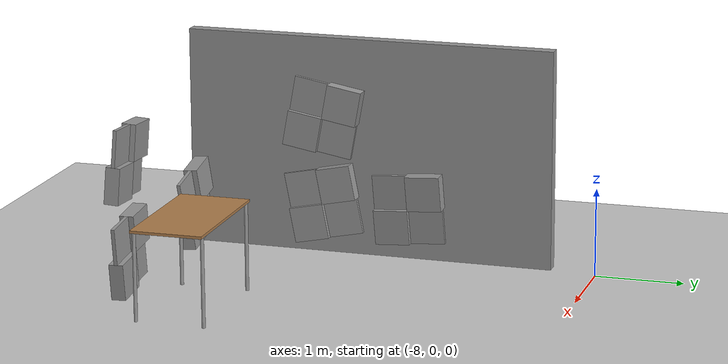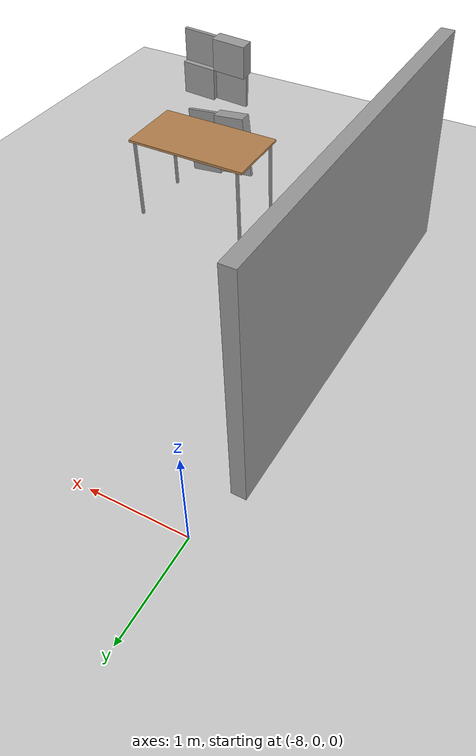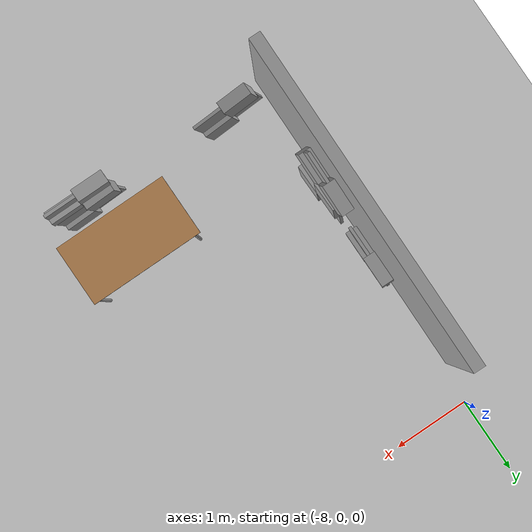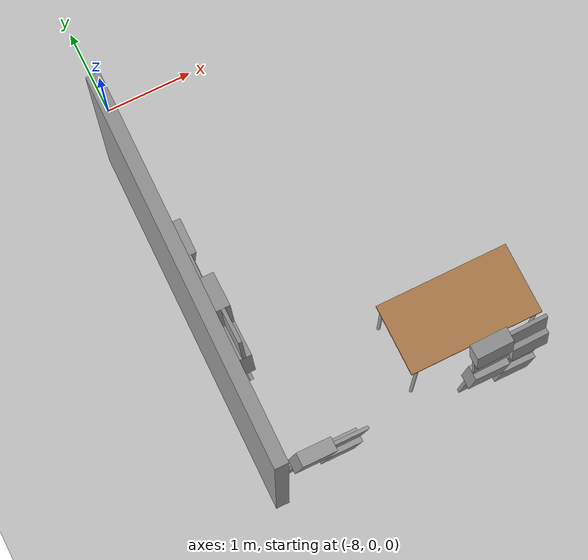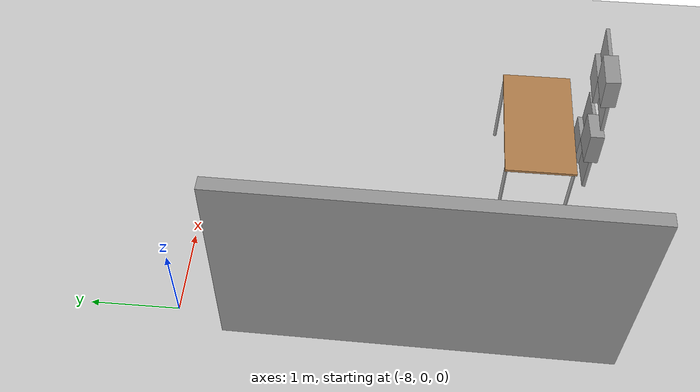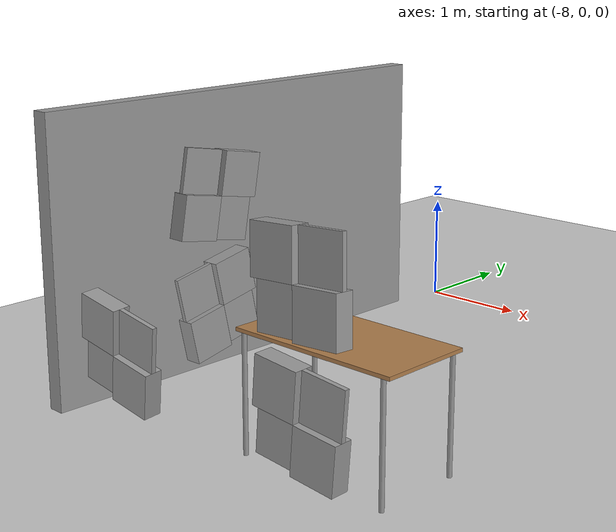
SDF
<sdf version="1.7">
 <world name="default">
  <model name="demo_clean">
   <static>1</static>
   <link name="Wall_1">
    <collision name="Wall_1_Collision">
     <geometry><box><size>4.27044 0.15 2.5</size></box></geometry>
     <pose>0 0 1.25 0 -0 0</pose>
     <surface>
      <friction>
       <ode><mu>1</mu><mu2>1</mu2><fdir1>0 0 0</fdir1><slip1>0</slip1><slip2>0</slip2></ode>
       <torsional>
        <coefficient>1</coefficient>
        <patch_radius>0</patch_radius>
        <surface_radius>0</surface_radius>
        <use_patch_radius>1</use_patch_radius>
        <ode><slip>0</slip></ode>
       </torsional>
      </friction>
      <bounce><restitution_coefficient>0</restitution_coefficient><threshold>1e+06</threshold></bounce>
      <contact>
       <collide_without_contact>0</collide_without_contact>
       <collide_without_contact_bitmask>1</collide_without_contact_bitmask>
       <collide_bitmask>1</collide_bitmask>
       <ode>
        <soft_cfm>0</soft_cfm>
        <soft_erp>0.2</soft_erp>
        <kp>1e+13</kp>
        <kd>1</kd>
        <max_vel>0.01</max_vel>
        <min_depth>0</min_depth>
       </ode>
       <bullet>
        <split_impulse>1</split_impulse>
        <split_impulse_penetration_threshold>-0.01</split_impulse_penetration_threshold>
        <soft_cfm>0</soft_cfm>
        <soft_erp>0.2</soft_erp>
        <kp>1e+13</kp>
        <kd>1</kd>
       </bullet>
      </contact>
     </surface>
    </collision>
    <visual name="Wall_1_Visual">
     <geometry><box><size>4.27044 0.15 2.5</size></box></geometry>
     <material>
      <script><name>Gazebo/Grey</name><uri>file://media/materials/scripts/gazebo.material</uri></script>
      <ambient>1 1 1 1</ambient>
      <shader type="pixel"><normal_map>default</normal_map></shader>
     </material>
     <pose>0 0 1.25 0 -0 0</pose>
    </visual>
    <pose>-8.17617 -2.66151 0 0 0 -1.58051</pose>
   </link>
  </model>
  <model name="ground_plane">
   <static>1</static>
   <link name="link">
    <collision name="collision">
     <geometry><plane><normal>0 0 1</normal><size>100 100</size></plane></geometry>
     <surface>
      <contact><collide_bitmask>65535</collide_bitmask></contact>
      <friction><ode><mu>100</mu><mu2>50</mu2></ode></friction>
     </surface>
    </collision>
    <visual name="visual">
     <cast_shadows>0</cast_shadows>
     <geometry><plane><normal>0 0 1</normal><size>100 100</size></plane></geometry>
     <material>
      <script><uri>file://media/materials/scripts/gazebo.material</uri><name>Gazebo/Grey</name></script>
     </material>
    </visual>
   </link>
  </model>
  <model name="wall_slate_13">
   <static>1</static>
   <link name="link_0">
    <inertial><mass>1</mass></inertial>
    <gravity>0</gravity>
    <visual name="visual">
     <pose>0 0.2 0.2 0 -0 0</pose>
     <geometry><box><size>0.16 0.4 0.4</size></box></geometry>
     <material>
      <lighting>1</lighting>
      <script><uri>file://media/materials/scripts/gazebo.material</uri><name>Gazebo/Grey</name></script>
      <shader type="pixel"><normal_map>__default__</normal_map></shader>
      <ambient>0.3 0.3 0.3 1</ambient>
      <diffuse>0.7 0.7 0.7 1</diffuse>
      <specular>0.01 0.01 0.01 1</specular>
      <emissive>0 0 0 1</emissive>
     </material>
    </visual>
    <visual name="ModelPreview_0::link_0::visual_1">
     <pose>0 0.2 -0.2 0 -0 0</pose>
     <geometry><box><size>0.04 0.4 0.4</size></box></geometry>
     <material>
      <lighting>1</lighting>
      <script><uri>file://media/materials/scripts/gazebo.material</uri><name>Gazebo/Grey</name></script>
      <shader type="pixel"><normal_map>__default__</normal_map></shader>
      <ambient>0.3 0.3 0.3 1</ambient>
      <diffuse>0.7 0.7 0.7 1</diffuse>
      <specular>0.01 0.01 0.01 1</specular>
      <emissive>0 0 0 1</emissive>
     </material>
    </visual>
    <visual name="ModelPreview_0::link_0::visual_2">
     <pose>0 -0.2 0.2 0 -0 0</pose>
     <geometry><box><size>0.04 0.4 0.4</size></box></geometry>
     <material>
      <lighting>1</lighting>
      <script><uri>file://media/materials/scripts/gazebo.material</uri><name>Gazebo/Grey</name></script>
      <shader type="pixel"><normal_map>__default__</normal_map></shader>
      <ambient>0.3 0.3 0.3 1</ambient>
      <diffuse>0.7 0.7 0.7 1</diffuse>
      <specular>0.01 0.01 0.01 1</specular>
      <emissive>0 0 0 1</emissive>
     </material>
    </visual>
    <visual name="ModelPreview_0::link_0::visual_3">
     <pose>0 -0.2 -0.2 0 -0 0</pose>
     <geometry><box><size>0.16 0.4 0.4</size></box></geometry>
     <material>
      <lighting>1</lighting>
      <script><uri>file://media/materials/scripts/gazebo.material</uri><name>Gazebo/Grey</name></script>
      <shader type="pixel"><normal_map>__default__</normal_map></shader>
      <ambient>0.3 0.3 0.3 1</ambient>
      <diffuse>0.7 0.7 0.7 1</diffuse>
      <specular>0.01 0.01 0.01 1</specular>
      <emissive>0 0 0 1</emissive>
     </material>
    </visual>
    <collision name="collision_2">
     <pose>0 -0.2 0.2 0 -0 0</pose>
     <geometry><box><size>0.04 0.4 0.4</size></box></geometry>
     <surface>
      <friction>
       <ode><mu>1</mu><mu2>1</mu2><fdir1>0 0 0</fdir1><slip1>0</slip1><slip2>0</slip2></ode>
       <torsional>
        <coefficient>1</coefficient>
        <patch_radius>0</patch_radius>
        <surface_radius>0</surface_radius>
        <use_patch_radius>1</use_patch_radius>
        <ode><slip>0</slip></ode>
       </torsional>
      </friction>
      <bounce><restitution_coefficient>0</restitution_coefficient><threshold>1e+06</threshold></bounce>
      <contact>
       <collide_without_contact>0</collide_without_contact>
       <collide_without_contact_bitmask>1</collide_without_contact_bitmask>
       <collide_bitmask>1</collide_bitmask>
       <ode>
        <soft_cfm>0</soft_cfm>
        <soft_erp>0.2</soft_erp>
        <kp>1e+13</kp>
        <kd>1</kd>
        <max_vel>0.01</max_vel>
        <min_depth>0</min_depth>
       </ode>
       <bullet>
        <split_impulse>1</split_impulse>
        <split_impulse_penetration_threshold>-0.01</split_impulse_penetration_threshold>
        <soft_cfm>0</soft_cfm>
        <soft_erp>0.2</soft_erp>
        <kp>1e+13</kp>
        <kd>1</kd>
       </bullet>
      </contact>
     </surface>
    </collision>
    <collision name="collision_1">
     <pose>0 0.2 -0.2 0 -0 0</pose>
     <geometry><box><size>0.04 0.4 0.4</size></box></geometry>
     <surface>
      <friction>
       <ode><mu>1</mu><mu2>1</mu2><fdir1>0 0 0</fdir1><slip1>0</slip1><slip2>0</slip2></ode>
       <torsional>
        <coefficient>1</coefficient>
        <patch_radius>0</patch_radius>
        <surface_radius>0</surface_radius>
        <use_patch_radius>1</use_patch_radius>
        <ode><slip>0</slip></ode>
       </torsional>
      </friction>
      <bounce><restitution_coefficient>0</restitution_coefficient><threshold>1e+06</threshold></bounce>
      <contact>
       <collide_without_contact>0</collide_without_contact>
       <collide_without_contact_bitmask>1</collide_without_contact_bitmask>
       <collide_bitmask>1</collide_bitmask>
       <ode>
        <soft_cfm>0</soft_cfm>
        <soft_erp>0.2</soft_erp>
        <kp>1e+13</kp>
        <kd>1</kd>
        <max_vel>0.01</max_vel>
        <min_depth>0</min_depth>
       </ode>
       <bullet>
        <split_impulse>1</split_impulse>
        <split_impulse_penetration_threshold>-0.01</split_impulse_penetration_threshold>
        <soft_cfm>0</soft_cfm>
        <soft_erp>0.2</soft_erp>
        <kp>1e+13</kp>
        <kd>1</kd>
       </bullet>
      </contact>
     </surface>
    </collision>
    <collision name="collision_4">
     <pose>0 0.2 0.2 0 -0 0</pose>
     <geometry><box><size>0.16 0.4 0.4</size></box></geometry>
     <surface>
      <friction>
       <ode><mu>1</mu><mu2>1</mu2><fdir1>0 0 0</fdir1><slip1>0</slip1><slip2>0</slip2></ode>
       <torsional>
        <coefficient>1</coefficient>
        <patch_radius>0</patch_radius>
        <surface_radius>0</surface_radius>
        <use_patch_radius>1</use_patch_radius>
        <ode><slip>0</slip></ode>
       </torsional>
      </friction>
      <bounce><restitution_coefficient>0</restitution_coefficient><threshold>1e+06</threshold></bounce>
      <contact>
       <collide_without_contact>0</collide_without_contact>
       <collide_without_contact_bitmask>1</collide_without_contact_bitmask>
       <collide_bitmask>1</collide_bitmask>
       <ode>
        <soft_cfm>0</soft_cfm>
        <soft_erp>0.2</soft_erp>
        <kp>1e+13</kp>
        <kd>1</kd>
        <max_vel>0.01</max_vel>
        <min_depth>0</min_depth>
       </ode>
       <bullet>
        <split_impulse>1</split_impulse>
        <split_impulse_penetration_threshold>-0.01</split_impulse_penetration_threshold>
        <soft_cfm>0</soft_cfm>
        <soft_erp>0.2</soft_erp>
        <kp>1e+13</kp>
        <kd>1</kd>
       </bullet>
      </contact>
     </surface>
    </collision>
    <collision name="collision_3">
     <pose>0 -0.2 -0.2 0 -0 0</pose>
     <geometry><box><size>0.16 0.4 0.4</size></box></geometry>
     <surface>
      <friction>
       <ode><mu>1</mu><mu2>1</mu2><fdir1>0 0 0</fdir1><slip1>0</slip1><slip2>0</slip2></ode>
       <torsional>
        <coefficient>1</coefficient>
        <patch_radius>0</patch_radius>
        <surface_radius>0</surface_radius>
        <use_patch_radius>1</use_patch_radius>
        <ode><slip>0</slip></ode>
       </torsional>
      </friction>
      <bounce><restitution_coefficient>0</restitution_coefficient><threshold>1e+06</threshold></bounce>
      <contact>
       <collide_without_contact>0</collide_without_contact>
       <collide_without_contact_bitmask>1</collide_without_contact_bitmask>
       <collide_bitmask>1</collide_bitmask>
       <ode>
        <soft_cfm>0</soft_cfm>
        <soft_erp>0.2</soft_erp>
        <kp>1e+13</kp>
        <kd>1</kd>
        <max_vel>0.01</max_vel>
        <min_depth>0</min_depth>
       </ode>
       <bullet>
        <split_impulse>1</split_impulse>
        <split_impulse_penetration_threshold>-0.01</split_impulse_penetration_threshold>
        <soft_cfm>0</soft_cfm>
        <soft_erp>0.2</soft_erp>
        <kp>1e+13</kp>
        <kd>1</kd>
       </bullet>
      </contact>
     </surface>
    </collision>
   </link>
   <pose>-5.59149 -4.565 0.6 0.1 -0.02 1.5757</pose>
  </model>
  <model name="wall_slate_33">
   <static>1</static>
   <link name="link_0">
    <inertial><mass>1</mass></inertial>
    <gravity>0</gravity>
    <visual name="visual">
     <pose>0 0.2 0.2 0 -0 0</pose>
     <geometry><box><size>0.16 0.4 0.4</size></box></geometry>
     <material>
      <lighting>1</lighting>
      <script><uri>file://media/materials/scripts/gazebo.material</uri><name>Gazebo/Grey</name></script>
      <shader type="pixel"><normal_map>__default__</normal_map></shader>
      <ambient>0.3 0.3 0.3 1</ambient>
      <diffuse>0.7 0.7 0.7 1</diffuse>
      <specular>0.01 0.01 0.01 1</specular>
      <emissive>0 0 0 1</emissive>
     </material>
    </visual>
    <visual name="ModelPreview_0::link_0::visual_1">
     <pose>0 0.2 -0.2 0 -0 0</pose>
     <geometry><box><size>0.04 0.4 0.4</size></box></geometry>
     <material>
      <lighting>1</lighting>
      <script><uri>file://media/materials/scripts/gazebo.material</uri><name>Gazebo/Grey</name></script>
      <shader type="pixel"><normal_map>__default__</normal_map></shader>
      <ambient>0.3 0.3 0.3 1</ambient>
      <diffuse>0.7 0.7 0.7 1</diffuse>
      <specular>0.01 0.01 0.01 1</specular>
      <emissive>0 0 0 1</emissive>
     </material>
    </visual>
    <visual name="ModelPreview_0::link_0::visual_2">
     <pose>0 -0.2 0.2 0 -0 0</pose>
     <geometry><box><size>0.04 0.4 0.4</size></box></geometry>
     <material>
      <lighting>1</lighting>
      <script><uri>file://media/materials/scripts/gazebo.material</uri><name>Gazebo/Grey</name></script>
      <shader type="pixel"><normal_map>__default__</normal_map></shader>
      <ambient>0.3 0.3 0.3 1</ambient>
      <diffuse>0.7 0.7 0.7 1</diffuse>
      <specular>0.01 0.01 0.01 1</specular>
      <emissive>0 0 0 1</emissive>
     </material>
    </visual>
    <visual name="ModelPreview_0::link_0::visual_3">
     <pose>0 -0.2 -0.2 0 -0 0</pose>
     <geometry><box><size>0.16 0.4 0.4</size></box></geometry>
     <material>
      <lighting>1</lighting>
      <script><uri>file://media/materials/scripts/gazebo.material</uri><name>Gazebo/Grey</name></script>
      <shader type="pixel"><normal_map>__default__</normal_map></shader>
      <ambient>0.3 0.3 0.3 1</ambient>
      <diffuse>0.7 0.7 0.7 1</diffuse>
      <specular>0.01 0.01 0.01 1</specular>
      <emissive>0 0 0 1</emissive>
     </material>
    </visual>
    <collision name="collision_2">
     <pose>0 -0.2 0.2 0 -0 0</pose>
     <geometry><box><size>0.04 0.4 0.4</size></box></geometry>
     <surface>
      <friction>
       <ode><mu>1</mu><mu2>1</mu2><fdir1>0 0 0</fdir1><slip1>0</slip1><slip2>0</slip2></ode>
       <torsional>
        <coefficient>1</coefficient>
        <patch_radius>0</patch_radius>
        <surface_radius>0</surface_radius>
        <use_patch_radius>1</use_patch_radius>
        <ode><slip>0</slip></ode>
       </torsional>
      </friction>
      <bounce><restitution_coefficient>0</restitution_coefficient><threshold>1e+06</threshold></bounce>
      <contact>
       <collide_without_contact>0</collide_without_contact>
       <collide_without_contact_bitmask>1</collide_without_contact_bitmask>
       <collide_bitmask>1</collide_bitmask>
       <ode>
        <soft_cfm>0</soft_cfm>
        <soft_erp>0.2</soft_erp>
        <kp>1e+13</kp>
        <kd>1</kd>
        <max_vel>0.01</max_vel>
        <min_depth>0</min_depth>
       </ode>
       <bullet>
        <split_impulse>1</split_impulse>
        <split_impulse_penetration_threshold>-0.01</split_impulse_penetration_threshold>
        <soft_cfm>0</soft_cfm>
        <soft_erp>0.2</soft_erp>
        <kp>1e+13</kp>
        <kd>1</kd>
       </bullet>
      </contact>
     </surface>
    </collision>
    <collision name="collision_1">
     <pose>0 0.2 -0.2 0 -0 0</pose>
     <geometry><box><size>0.04 0.4 0.4</size></box></geometry>
     <surface>
      <friction>
       <ode><mu>1</mu><mu2>1</mu2><fdir1>0 0 0</fdir1><slip1>0</slip1><slip2>0</slip2></ode>
       <torsional>
        <coefficient>1</coefficient>
        <patch_radius>0</patch_radius>
        <surface_radius>0</surface_radius>
        <use_patch_radius>1</use_patch_radius>
        <ode><slip>0</slip></ode>
       </torsional>
      </friction>
      <bounce><restitution_coefficient>0</restitution_coefficient><threshold>1e+06</threshold></bounce>
      <contact>
       <collide_without_contact>0</collide_without_contact>
       <collide_without_contact_bitmask>1</collide_without_contact_bitmask>
       <collide_bitmask>1</collide_bitmask>
       <ode>
        <soft_cfm>0</soft_cfm>
        <soft_erp>0.2</soft_erp>
        <kp>1e+13</kp>
        <kd>1</kd>
        <max_vel>0.01</max_vel>
        <min_depth>0</min_depth>
       </ode>
       <bullet>
        <split_impulse>1</split_impulse>
        <split_impulse_penetration_threshold>-0.01</split_impulse_penetration_threshold>
        <soft_cfm>0</soft_cfm>
        <soft_erp>0.2</soft_erp>
        <kp>1e+13</kp>
        <kd>1</kd>
       </bullet>
      </contact>
     </surface>
    </collision>
    <collision name="collision_4">
     <pose>0 0.2 0.2 0 -0 0</pose>
     <geometry><box><size>0.16 0.4 0.4</size></box></geometry>
     <surface>
      <friction>
       <ode><mu>1</mu><mu2>1</mu2><fdir1>0 0 0</fdir1><slip1>0</slip1><slip2>0</slip2></ode>
       <torsional>
        <coefficient>1</coefficient>
        <patch_radius>0</patch_radius>
        <surface_radius>0</surface_radius>
        <use_patch_radius>1</use_patch_radius>
        <ode><slip>0</slip></ode>
       </torsional>
      </friction>
      <bounce><restitution_coefficient>0</restitution_coefficient><threshold>1e+06</threshold></bounce>
      <contact>
       <collide_without_contact>0</collide_without_contact>
       <collide_without_contact_bitmask>1</collide_without_contact_bitmask>
       <collide_bitmask>1</collide_bitmask>
       <ode>
        <soft_cfm>0</soft_cfm>
        <soft_erp>0.2</soft_erp>
        <kp>1e+13</kp>
        <kd>1</kd>
        <max_vel>0.01</max_vel>
        <min_depth>0</min_depth>
       </ode>
       <bullet>
        <split_impulse>1</split_impulse>
        <split_impulse_penetration_threshold>-0.01</split_impulse_penetration_threshold>
        <soft_cfm>0</soft_cfm>
        <soft_erp>0.2</soft_erp>
        <kp>1e+13</kp>
        <kd>1</kd>
       </bullet>
      </contact>
     </surface>
    </collision>
    <collision name="collision_3">
     <pose>0 -0.2 -0.2 0 -0 0</pose>
     <geometry><box><size>0.16 0.4 0.4</size></box></geometry>
     <surface>
      <friction>
       <ode><mu>1</mu><mu2>1</mu2><fdir1>0 0 0</fdir1><slip1>0</slip1><slip2>0</slip2></ode>
       <torsional>
        <coefficient>1</coefficient>
        <patch_radius>0</patch_radius>
        <surface_radius>0</surface_radius>
        <use_patch_radius>1</use_patch_radius>
        <ode><slip>0</slip></ode>
       </torsional>
      </friction>
      <bounce><restitution_coefficient>0</restitution_coefficient><threshold>1e+06</threshold></bounce>
      <contact>
       <collide_without_contact>0</collide_without_contact>
       <collide_without_contact_bitmask>1</collide_without_contact_bitmask>
       <collide_bitmask>1</collide_bitmask>
       <ode>
        <soft_cfm>0</soft_cfm>
        <soft_erp>0.2</soft_erp>
        <kp>1e+13</kp>
        <kd>1</kd>
        <max_vel>0.01</max_vel>
        <min_depth>0</min_depth>
       </ode>
       <bullet>
        <split_impulse>1</split_impulse>
        <split_impulse_penetration_threshold>-0.01</split_impulse_penetration_threshold>
        <soft_cfm>0</soft_cfm>
        <soft_erp>0.2</soft_erp>
        <kp>1e+13</kp>
        <kd>1</kd>
       </bullet>
      </contact>
     </surface>
    </collision>
   </link>
   <pose>-5.59149 -4.565 1.6 -0.06 0.06 1.5757</pose>
  </model>
  <model name="wall_slate_37">
   <static>1</static>
   <link name="link_0">
    <inertial><mass>1</mass></inertial>
    <gravity>0</gravity>
    <visual name="visual">
     <pose>0 0.2 0.2 0 -0 0</pose>
     <geometry><box><size>0.16 0.4 0.4</size></box></geometry>
     <material>
      <lighting>1</lighting>
      <script><uri>file://media/materials/scripts/gazebo.material</uri><name>Gazebo/Grey</name></script>
      <shader type="pixel"><normal_map>__default__</normal_map></shader>
      <ambient>0.3 0.3 0.3 1</ambient>
      <diffuse>0.7 0.7 0.7 1</diffuse>
      <specular>0.01 0.01 0.01 1</specular>
      <emissive>0 0 0 1</emissive>
     </material>
    </visual>
    <visual name="ModelPreview_0::link_0::visual_1">
     <pose>0 0.2 -0.2 0 -0 0</pose>
     <geometry><box><size>0.04 0.4 0.4</size></box></geometry>
     <material>
      <lighting>1</lighting>
      <script><uri>file://media/materials/scripts/gazebo.material</uri><name>Gazebo/Grey</name></script>
      <shader type="pixel"><normal_map>__default__</normal_map></shader>
      <ambient>0.3 0.3 0.3 1</ambient>
      <diffuse>0.7 0.7 0.7 1</diffuse>
      <specular>0.01 0.01 0.01 1</specular>
      <emissive>0 0 0 1</emissive>
     </material>
    </visual>
    <visual name="ModelPreview_0::link_0::visual_2">
     <pose>0 -0.2 0.2 0 -0 0</pose>
     <geometry><box><size>0.04 0.4 0.4</size></box></geometry>
     <material>
      <lighting>1</lighting>
      <script><uri>file://media/materials/scripts/gazebo.material</uri><name>Gazebo/Grey</name></script>
      <shader type="pixel"><normal_map>__default__</normal_map></shader>
      <ambient>0.3 0.3 0.3 1</ambient>
      <diffuse>0.7 0.7 0.7 1</diffuse>
      <specular>0.01 0.01 0.01 1</specular>
      <emissive>0 0 0 1</emissive>
     </material>
    </visual>
    <visual name="ModelPreview_0::link_0::visual_3">
     <pose>0 -0.2 -0.2 0 -0 0</pose>
     <geometry><box><size>0.16 0.4 0.4</size></box></geometry>
     <material>
      <lighting>1</lighting>
      <script><uri>file://media/materials/scripts/gazebo.material</uri><name>Gazebo/Grey</name></script>
      <shader type="pixel"><normal_map>__default__</normal_map></shader>
      <ambient>0.3 0.3 0.3 1</ambient>
      <diffuse>0.7 0.7 0.7 1</diffuse>
      <specular>0.01 0.01 0.01 1</specular>
      <emissive>0 0 0 1</emissive>
     </material>
    </visual>
    <collision name="collision_2">
     <pose>0 -0.2 0.2 0 -0 0</pose>
     <geometry><box><size>0.04 0.4 0.4</size></box></geometry>
     <surface>
      <friction>
       <ode><mu>1</mu><mu2>1</mu2><fdir1>0 0 0</fdir1><slip1>0</slip1><slip2>0</slip2></ode>
       <torsional>
        <coefficient>1</coefficient>
        <patch_radius>0</patch_radius>
        <surface_radius>0</surface_radius>
        <use_patch_radius>1</use_patch_radius>
        <ode><slip>0</slip></ode>
       </torsional>
      </friction>
      <bounce><restitution_coefficient>0</restitution_coefficient><threshold>1e+06</threshold></bounce>
      <contact>
       <collide_without_contact>0</collide_without_contact>
       <collide_without_contact_bitmask>1</collide_without_contact_bitmask>
       <collide_bitmask>1</collide_bitmask>
       <ode>
        <soft_cfm>0</soft_cfm>
        <soft_erp>0.2</soft_erp>
        <kp>1e+13</kp>
        <kd>1</kd>
        <max_vel>0.01</max_vel>
        <min_depth>0</min_depth>
       </ode>
       <bullet>
        <split_impulse>1</split_impulse>
        <split_impulse_penetration_threshold>-0.01</split_impulse_penetration_threshold>
        <soft_cfm>0</soft_cfm>
        <soft_erp>0.2</soft_erp>
        <kp>1e+13</kp>
        <kd>1</kd>
       </bullet>
      </contact>
     </surface>
    </collision>
    <collision name="collision_1">
     <pose>0 0.2 -0.2 0 -0 0</pose>
     <geometry><box><size>0.04 0.4 0.4</size></box></geometry>
     <surface>
      <friction>
       <ode><mu>1</mu><mu2>1</mu2><fdir1>0 0 0</fdir1><slip1>0</slip1><slip2>0</slip2></ode>
       <torsional>
        <coefficient>1</coefficient>
        <patch_radius>0</patch_radius>
        <surface_radius>0</surface_radius>
        <use_patch_radius>1</use_patch_radius>
        <ode><slip>0</slip></ode>
       </torsional>
      </friction>
      <bounce><restitution_coefficient>0</restitution_coefficient><threshold>1e+06</threshold></bounce>
      <contact>
       <collide_without_contact>0</collide_without_contact>
       <collide_without_contact_bitmask>1</collide_without_contact_bitmask>
       <collide_bitmask>1</collide_bitmask>
       <ode>
        <soft_cfm>0</soft_cfm>
        <soft_erp>0.2</soft_erp>
        <kp>1e+13</kp>
        <kd>1</kd>
        <max_vel>0.01</max_vel>
        <min_depth>0</min_depth>
       </ode>
       <bullet>
        <split_impulse>1</split_impulse>
        <split_impulse_penetration_threshold>-0.01</split_impulse_penetration_threshold>
        <soft_cfm>0</soft_cfm>
        <soft_erp>0.2</soft_erp>
        <kp>1e+13</kp>
        <kd>1</kd>
       </bullet>
      </contact>
     </surface>
    </collision>
    <collision name="collision_4">
     <pose>0 0.2 0.2 0 -0 0</pose>
     <geometry><box><size>0.16 0.4 0.4</size></box></geometry>
     <surface>
      <friction>
       <ode><mu>1</mu><mu2>1</mu2><fdir1>0 0 0</fdir1><slip1>0</slip1><slip2>0</slip2></ode>
       <torsional>
        <coefficient>1</coefficient>
        <patch_radius>0</patch_radius>
        <surface_radius>0</surface_radius>
        <use_patch_radius>1</use_patch_radius>
        <ode><slip>0</slip></ode>
       </torsional>
      </friction>
      <bounce><restitution_coefficient>0</restitution_coefficient><threshold>1e+06</threshold></bounce>
      <contact>
       <collide_without_contact>0</collide_without_contact>
       <collide_without_contact_bitmask>1</collide_without_contact_bitmask>
       <collide_bitmask>1</collide_bitmask>
       <ode>
        <soft_cfm>0</soft_cfm>
        <soft_erp>0.2</soft_erp>
        <kp>1e+13</kp>
        <kd>1</kd>
        <max_vel>0.01</max_vel>
        <min_depth>0</min_depth>
       </ode>
       <bullet>
        <split_impulse>1</split_impulse>
        <split_impulse_penetration_threshold>-0.01</split_impulse_penetration_threshold>
        <soft_cfm>0</soft_cfm>
        <soft_erp>0.2</soft_erp>
        <kp>1e+13</kp>
        <kd>1</kd>
       </bullet>
      </contact>
     </surface>
    </collision>
    <collision name="collision_3">
     <pose>0 -0.2 -0.2 0 -0 0</pose>
     <geometry><box><size>0.16 0.4 0.4</size></box></geometry>
     <surface>
      <friction>
       <ode><mu>1</mu><mu2>1</mu2><fdir1>0 0 0</fdir1><slip1>0</slip1><slip2>0</slip2></ode>
       <torsional>
        <coefficient>1</coefficient>
        <patch_radius>0</patch_radius>
        <surface_radius>0</surface_radius>
        <use_patch_radius>1</use_patch_radius>
        <ode><slip>0</slip></ode>
       </torsional>
      </friction>
      <bounce><restitution_coefficient>0</restitution_coefficient><threshold>1e+06</threshold></bounce>
      <contact>
       <collide_without_contact>0</collide_without_contact>
       <collide_without_contact_bitmask>1</collide_without_contact_bitmask>
       <collide_bitmask>1</collide_bitmask>
       <ode>
        <soft_cfm>0</soft_cfm>
        <soft_erp>0.2</soft_erp>
        <kp>1e+13</kp>
        <kd>1</kd>
        <max_vel>0.01</max_vel>
        <min_depth>0</min_depth>
       </ode>
       <bullet>
        <split_impulse>1</split_impulse>
        <split_impulse_penetration_threshold>-0.01</split_impulse_penetration_threshold>
        <soft_cfm>0</soft_cfm>
        <soft_erp>0.2</soft_erp>
        <kp>1e+13</kp>
        <kd>1</kd>
       </bullet>
      </contact>
     </surface>
    </collision>
   </link>
   <pose>-7.99632 -3.15979 0.6 0.2 -0.02 -0.00481</pose>
  </model>
  <model name="wall_slate_64">
   <static>1</static>
   <link name="link_0">
    <inertial><mass>1</mass></inertial>
    <gravity>0</gravity>
    <visual name="visual">
     <pose>0 0.2 0.2 0 -0 0</pose>
     <geometry><box><size>0.16 0.4 0.4</size></box></geometry>
     <material>
      <lighting>1</lighting>
      <script><uri>file://media/materials/scripts/gazebo.material</uri><name>Gazebo/Grey</name></script>
      <shader type="pixel"><normal_map>__default__</normal_map></shader>
      <ambient>0.3 0.3 0.3 1</ambient>
      <diffuse>0.7 0.7 0.7 1</diffuse>
      <specular>0.01 0.01 0.01 1</specular>
      <emissive>0 0 0 1</emissive>
     </material>
    </visual>
    <visual name="ModelPreview_0::link_0::visual_1">
     <pose>0 0.2 -0.2 0 -0 0</pose>
     <geometry><box><size>0.04 0.4 0.4</size></box></geometry>
     <material>
      <lighting>1</lighting>
      <script><uri>file://media/materials/scripts/gazebo.material</uri><name>Gazebo/Grey</name></script>
      <shader type="pixel"><normal_map>__default__</normal_map></shader>
      <ambient>0.3 0.3 0.3 1</ambient>
      <diffuse>0.7 0.7 0.7 1</diffuse>
      <specular>0.01 0.01 0.01 1</specular>
      <emissive>0 0 0 1</emissive>
     </material>
    </visual>
    <visual name="ModelPreview_0::link_0::visual_2">
     <pose>0 -0.2 0.2 0 -0 0</pose>
     <geometry><box><size>0.04 0.4 0.4</size></box></geometry>
     <material>
      <lighting>1</lighting>
      <script><uri>file://media/materials/scripts/gazebo.material</uri><name>Gazebo/Grey</name></script>
      <shader type="pixel"><normal_map>__default__</normal_map></shader>
      <ambient>0.3 0.3 0.3 1</ambient>
      <diffuse>0.7 0.7 0.7 1</diffuse>
      <specular>0.01 0.01 0.01 1</specular>
      <emissive>0 0 0 1</emissive>
     </material>
    </visual>
    <visual name="ModelPreview_0::link_0::visual_3">
     <pose>0 -0.2 -0.2 0 -0 0</pose>
     <geometry><box><size>0.16 0.4 0.4</size></box></geometry>
     <material>
      <lighting>1</lighting>
      <script><uri>file://media/materials/scripts/gazebo.material</uri><name>Gazebo/Grey</name></script>
      <shader type="pixel"><normal_map>__default__</normal_map></shader>
      <ambient>0.3 0.3 0.3 1</ambient>
      <diffuse>0.7 0.7 0.7 1</diffuse>
      <specular>0.01 0.01 0.01 1</specular>
      <emissive>0 0 0 1</emissive>
     </material>
    </visual>
    <collision name="collision_2">
     <pose>0 -0.2 0.2 0 -0 0</pose>
     <geometry><box><size>0.04 0.4 0.4</size></box></geometry>
     <surface>
      <friction>
       <ode><mu>1</mu><mu2>1</mu2><fdir1>0 0 0</fdir1><slip1>0</slip1><slip2>0</slip2></ode>
       <torsional>
        <coefficient>1</coefficient>
        <patch_radius>0</patch_radius>
        <surface_radius>0</surface_radius>
        <use_patch_radius>1</use_patch_radius>
        <ode><slip>0</slip></ode>
       </torsional>
      </friction>
      <bounce><restitution_coefficient>0</restitution_coefficient><threshold>1e+06</threshold></bounce>
      <contact>
       <collide_without_contact>0</collide_without_contact>
       <collide_without_contact_bitmask>1</collide_without_contact_bitmask>
       <collide_bitmask>1</collide_bitmask>
       <ode>
        <soft_cfm>0</soft_cfm>
        <soft_erp>0.2</soft_erp>
        <kp>1e+13</kp>
        <kd>1</kd>
        <max_vel>0.01</max_vel>
        <min_depth>0</min_depth>
       </ode>
       <bullet>
        <split_impulse>1</split_impulse>
        <split_impulse_penetration_threshold>-0.01</split_impulse_penetration_threshold>
        <soft_cfm>0</soft_cfm>
        <soft_erp>0.2</soft_erp>
        <kp>1e+13</kp>
        <kd>1</kd>
       </bullet>
      </contact>
     </surface>
    </collision>
    <collision name="collision_1">
     <pose>0 0.2 -0.2 0 -0 0</pose>
     <geometry><box><size>0.04 0.4 0.4</size></box></geometry>
     <surface>
      <friction>
       <ode><mu>1</mu><mu2>1</mu2><fdir1>0 0 0</fdir1><slip1>0</slip1><slip2>0</slip2></ode>
       <torsional>
        <coefficient>1</coefficient>
        <patch_radius>0</patch_radius>
        <surface_radius>0</surface_radius>
        <use_patch_radius>1</use_patch_radius>
        <ode><slip>0</slip></ode>
       </torsional>
      </friction>
      <bounce><restitution_coefficient>0</restitution_coefficient><threshold>1e+06</threshold></bounce>
      <contact>
       <collide_without_contact>0</collide_without_contact>
       <collide_without_contact_bitmask>1</collide_without_contact_bitmask>
       <collide_bitmask>1</collide_bitmask>
       <ode>
        <soft_cfm>0</soft_cfm>
        <soft_erp>0.2</soft_erp>
        <kp>1e+13</kp>
        <kd>1</kd>
        <max_vel>0.01</max_vel>
        <min_depth>0</min_depth>
       </ode>
       <bullet>
        <split_impulse>1</split_impulse>
        <split_impulse_penetration_threshold>-0.01</split_impulse_penetration_threshold>
        <soft_cfm>0</soft_cfm>
        <soft_erp>0.2</soft_erp>
        <kp>1e+13</kp>
        <kd>1</kd>
       </bullet>
      </contact>
     </surface>
    </collision>
    <collision name="collision_4">
     <pose>0 0.2 0.2 0 -0 0</pose>
     <geometry><box><size>0.16 0.4 0.4</size></box></geometry>
     <surface>
      <friction>
       <ode><mu>1</mu><mu2>1</mu2><fdir1>0 0 0</fdir1><slip1>0</slip1><slip2>0</slip2></ode>
       <torsional>
        <coefficient>1</coefficient>
        <patch_radius>0</patch_radius>
        <surface_radius>0</surface_radius>
        <use_patch_radius>1</use_patch_radius>
        <ode><slip>0</slip></ode>
       </torsional>
      </friction>
      <bounce><restitution_coefficient>0</restitution_coefficient><threshold>1e+06</threshold></bounce>
      <contact>
       <collide_without_contact>0</collide_without_contact>
       <collide_without_contact_bitmask>1</collide_without_contact_bitmask>
       <collide_bitmask>1</collide_bitmask>
       <ode>
        <soft_cfm>0</soft_cfm>
        <soft_erp>0.2</soft_erp>
        <kp>1e+13</kp>
        <kd>1</kd>
        <max_vel>0.01</max_vel>
        <min_depth>0</min_depth>
       </ode>
       <bullet>
        <split_impulse>1</split_impulse>
        <split_impulse_penetration_threshold>-0.01</split_impulse_penetration_threshold>
        <soft_cfm>0</soft_cfm>
        <soft_erp>0.2</soft_erp>
        <kp>1e+13</kp>
        <kd>1</kd>
       </bullet>
      </contact>
     </surface>
    </collision>
    <collision name="collision_3">
     <pose>0 -0.2 -0.2 0 -0 0</pose>
     <geometry><box><size>0.16 0.4 0.4</size></box></geometry>
     <surface>
      <friction>
       <ode><mu>1</mu><mu2>1</mu2><fdir1>0 0 0</fdir1><slip1>0</slip1><slip2>0</slip2></ode>
       <torsional>
        <coefficient>1</coefficient>
        <patch_radius>0</patch_radius>
        <surface_radius>0</surface_radius>
        <use_patch_radius>1</use_patch_radius>
        <ode><slip>0</slip></ode>
       </torsional>
      </friction>
      <bounce><restitution_coefficient>0</restitution_coefficient><threshold>1e+06</threshold></bounce>
      <contact>
       <collide_without_contact>0</collide_without_contact>
       <collide_without_contact_bitmask>1</collide_without_contact_bitmask>
       <collide_bitmask>1</collide_bitmask>
       <ode>
        <soft_cfm>0</soft_cfm>
        <soft_erp>0.2</soft_erp>
        <kp>1e+13</kp>
        <kd>1</kd>
        <max_vel>0.01</max_vel>
        <min_depth>0</min_depth>
       </ode>
       <bullet>
        <split_impulse>1</split_impulse>
        <split_impulse_penetration_threshold>-0.01</split_impulse_penetration_threshold>
        <soft_cfm>0</soft_cfm>
        <soft_erp>0.2</soft_erp>
        <kp>1e+13</kp>
        <kd>1</kd>
       </bullet>
      </contact>
     </surface>
    </collision>
   </link>
   <pose>-7.59149 -4.565 0.6 0.18 -0.08 1.5757</pose>
  </model>
  <model name="wall_slate_72">
   <static>1</static>
   <link name="link_0">
    <inertial><mass>1</mass></inertial>
    <gravity>0</gravity>
    <visual name="visual">
     <pose>0 0.2 0.2 0 -0 0</pose>
     <geometry><box><size>0.16 0.4 0.4</size></box></geometry>
     <material>
      <lighting>1</lighting>
      <script><uri>file://media/materials/scripts/gazebo.material</uri><name>Gazebo/Grey</name></script>
      <shader type="pixel"><normal_map>__default__</normal_map></shader>
      <ambient>0.3 0.3 0.3 1</ambient>
      <diffuse>0.7 0.7 0.7 1</diffuse>
      <specular>0.01 0.01 0.01 1</specular>
      <emissive>0 0 0 1</emissive>
     </material>
    </visual>
    <visual name="ModelPreview_0::link_0::visual_1">
     <pose>0 0.2 -0.2 0 -0 0</pose>
     <geometry><box><size>0.04 0.4 0.4</size></box></geometry>
     <material>
      <lighting>1</lighting>
      <script><uri>file://media/materials/scripts/gazebo.material</uri><name>Gazebo/Grey</name></script>
      <shader type="pixel"><normal_map>__default__</normal_map></shader>
      <ambient>0.3 0.3 0.3 1</ambient>
      <diffuse>0.7 0.7 0.7 1</diffuse>
      <specular>0.01 0.01 0.01 1</specular>
      <emissive>0 0 0 1</emissive>
     </material>
    </visual>
    <visual name="ModelPreview_0::link_0::visual_2">
     <pose>0 -0.2 0.2 0 -0 0</pose>
     <geometry><box><size>0.04 0.4 0.4</size></box></geometry>
     <material>
      <lighting>1</lighting>
      <script><uri>file://media/materials/scripts/gazebo.material</uri><name>Gazebo/Grey</name></script>
      <shader type="pixel"><normal_map>__default__</normal_map></shader>
      <ambient>0.3 0.3 0.3 1</ambient>
      <diffuse>0.7 0.7 0.7 1</diffuse>
      <specular>0.01 0.01 0.01 1</specular>
      <emissive>0 0 0 1</emissive>
     </material>
    </visual>
    <visual name="ModelPreview_0::link_0::visual_3">
     <pose>0 -0.2 -0.2 0 -0 0</pose>
     <geometry><box><size>0.16 0.4 0.4</size></box></geometry>
     <material>
      <lighting>1</lighting>
      <script><uri>file://media/materials/scripts/gazebo.material</uri><name>Gazebo/Grey</name></script>
      <shader type="pixel"><normal_map>__default__</normal_map></shader>
      <ambient>0.3 0.3 0.3 1</ambient>
      <diffuse>0.7 0.7 0.7 1</diffuse>
      <specular>0.01 0.01 0.01 1</specular>
      <emissive>0 0 0 1</emissive>
     </material>
    </visual>
    <collision name="collision_2">
     <pose>0 -0.2 0.2 0 -0 0</pose>
     <geometry><box><size>0.04 0.4 0.4</size></box></geometry>
     <surface>
      <friction>
       <ode><mu>1</mu><mu2>1</mu2><fdir1>0 0 0</fdir1><slip1>0</slip1><slip2>0</slip2></ode>
       <torsional>
        <coefficient>1</coefficient>
        <patch_radius>0</patch_radius>
        <surface_radius>0</surface_radius>
        <use_patch_radius>1</use_patch_radius>
        <ode><slip>0</slip></ode>
       </torsional>
      </friction>
      <bounce><restitution_coefficient>0</restitution_coefficient><threshold>1e+06</threshold></bounce>
      <contact>
       <collide_without_contact>0</collide_without_contact>
       <collide_without_contact_bitmask>1</collide_without_contact_bitmask>
       <collide_bitmask>1</collide_bitmask>
       <ode>
        <soft_cfm>0</soft_cfm>
        <soft_erp>0.2</soft_erp>
        <kp>1e+13</kp>
        <kd>1</kd>
        <max_vel>0.01</max_vel>
        <min_depth>0</min_depth>
       </ode>
       <bullet>
        <split_impulse>1</split_impulse>
        <split_impulse_penetration_threshold>-0.01</split_impulse_penetration_threshold>
        <soft_cfm>0</soft_cfm>
        <soft_erp>0.2</soft_erp>
        <kp>1e+13</kp>
        <kd>1</kd>
       </bullet>
      </contact>
     </surface>
    </collision>
    <collision name="collision_1">
     <pose>0 0.2 -0.2 0 -0 0</pose>
     <geometry><box><size>0.04 0.4 0.4</size></box></geometry>
     <surface>
      <friction>
       <ode><mu>1</mu><mu2>1</mu2><fdir1>0 0 0</fdir1><slip1>0</slip1><slip2>0</slip2></ode>
       <torsional>
        <coefficient>1</coefficient>
        <patch_radius>0</patch_radius>
        <surface_radius>0</surface_radius>
        <use_patch_radius>1</use_patch_radius>
        <ode><slip>0</slip></ode>
       </torsional>
      </friction>
      <bounce><restitution_coefficient>0</restitution_coefficient><threshold>1e+06</threshold></bounce>
      <contact>
       <collide_without_contact>0</collide_without_contact>
       <collide_without_contact_bitmask>1</collide_without_contact_bitmask>
       <collide_bitmask>1</collide_bitmask>
       <ode>
        <soft_cfm>0</soft_cfm>
        <soft_erp>0.2</soft_erp>
        <kp>1e+13</kp>
        <kd>1</kd>
        <max_vel>0.01</max_vel>
        <min_depth>0</min_depth>
       </ode>
       <bullet>
        <split_impulse>1</split_impulse>
        <split_impulse_penetration_threshold>-0.01</split_impulse_penetration_threshold>
        <soft_cfm>0</soft_cfm>
        <soft_erp>0.2</soft_erp>
        <kp>1e+13</kp>
        <kd>1</kd>
       </bullet>
      </contact>
     </surface>
    </collision>
    <collision name="collision_4">
     <pose>0 0.2 0.2 0 -0 0</pose>
     <geometry><box><size>0.16 0.4 0.4</size></box></geometry>
     <surface>
      <friction>
       <ode><mu>1</mu><mu2>1</mu2><fdir1>0 0 0</fdir1><slip1>0</slip1><slip2>0</slip2></ode>
       <torsional>
        <coefficient>1</coefficient>
        <patch_radius>0</patch_radius>
        <surface_radius>0</surface_radius>
        <use_patch_radius>1</use_patch_radius>
        <ode><slip>0</slip></ode>
       </torsional>
      </friction>
      <bounce><restitution_coefficient>0</restitution_coefficient><threshold>1e+06</threshold></bounce>
      <contact>
       <collide_without_contact>0</collide_without_contact>
       <collide_without_contact_bitmask>1</collide_without_contact_bitmask>
       <collide_bitmask>1</collide_bitmask>
       <ode>
        <soft_cfm>0</soft_cfm>
        <soft_erp>0.2</soft_erp>
        <kp>1e+13</kp>
        <kd>1</kd>
        <max_vel>0.01</max_vel>
        <min_depth>0</min_depth>
       </ode>
       <bullet>
        <split_impulse>1</split_impulse>
        <split_impulse_penetration_threshold>-0.01</split_impulse_penetration_threshold>
        <soft_cfm>0</soft_cfm>
        <soft_erp>0.2</soft_erp>
        <kp>1e+13</kp>
        <kd>1</kd>
       </bullet>
      </contact>
     </surface>
    </collision>
    <collision name="collision_3">
     <pose>0 -0.2 -0.2 0 -0 0</pose>
     <geometry><box><size>0.16 0.4 0.4</size></box></geometry>
     <surface>
      <friction>
       <ode><mu>1</mu><mu2>1</mu2><fdir1>0 0 0</fdir1><slip1>0</slip1><slip2>0</slip2></ode>
       <torsional>
        <coefficient>1</coefficient>
        <patch_radius>0</patch_radius>
        <surface_radius>0</surface_radius>
        <use_patch_radius>1</use_patch_radius>
        <ode><slip>0</slip></ode>
       </torsional>
      </friction>
      <bounce><restitution_coefficient>0</restitution_coefficient><threshold>1e+06</threshold></bounce>
      <contact>
       <collide_without_contact>0</collide_without_contact>
       <collide_without_contact_bitmask>1</collide_without_contact_bitmask>
       <collide_bitmask>1</collide_bitmask>
       <ode>
        <soft_cfm>0</soft_cfm>
        <soft_erp>0.2</soft_erp>
        <kp>1e+13</kp>
        <kd>1</kd>
        <max_vel>0.01</max_vel>
        <min_depth>0</min_depth>
       </ode>
       <bullet>
        <split_impulse>1</split_impulse>
        <split_impulse_penetration_threshold>-0.01</split_impulse_penetration_threshold>
        <soft_cfm>0</soft_cfm>
        <soft_erp>0.2</soft_erp>
        <kp>1e+13</kp>
        <kd>1</kd>
       </bullet>
      </contact>
     </surface>
    </collision>
   </link>
   <pose>-8.00604 -2.15983 0.6 0.06 0.06 -0.00481</pose>
  </model>
  <model name="wall_slate_98">
   <static>1</static>
   <link name="link_0">
    <inertial><mass>1</mass></inertial>
    <gravity>0</gravity>
    <visual name="visual">
     <pose>0 0.2 0.2 0 -0 0</pose>
     <geometry><box><size>0.16 0.4 0.4</size></box></geometry>
     <material>
      <lighting>1</lighting>
      <script><uri>file://media/materials/scripts/gazebo.material</uri><name>Gazebo/Grey</name></script>
      <shader type="pixel"><normal_map>__default__</normal_map></shader>
      <ambient>0.3 0.3 0.3 1</ambient>
      <diffuse>0.7 0.7 0.7 1</diffuse>
      <specular>0.01 0.01 0.01 1</specular>
      <emissive>0 0 0 1</emissive>
     </material>
    </visual>
    <visual name="ModelPreview_0::link_0::visual_1">
     <pose>0 0.2 -0.2 0 -0 0</pose>
     <geometry><box><size>0.04 0.4 0.4</size></box></geometry>
     <material>
      <lighting>1</lighting>
      <script><uri>file://media/materials/scripts/gazebo.material</uri><name>Gazebo/Grey</name></script>
      <shader type="pixel"><normal_map>__default__</normal_map></shader>
      <ambient>0.3 0.3 0.3 1</ambient>
      <diffuse>0.7 0.7 0.7 1</diffuse>
      <specular>0.01 0.01 0.01 1</specular>
      <emissive>0 0 0 1</emissive>
     </material>
    </visual>
    <visual name="ModelPreview_0::link_0::visual_2">
     <pose>0 -0.2 0.2 0 -0 0</pose>
     <geometry><box><size>0.04 0.4 0.4</size></box></geometry>
     <material>
      <lighting>1</lighting>
      <script><uri>file://media/materials/scripts/gazebo.material</uri><name>Gazebo/Grey</name></script>
      <shader type="pixel"><normal_map>__default__</normal_map></shader>
      <ambient>0.3 0.3 0.3 1</ambient>
      <diffuse>0.7 0.7 0.7 1</diffuse>
      <specular>0.01 0.01 0.01 1</specular>
      <emissive>0 0 0 1</emissive>
     </material>
    </visual>
    <visual name="ModelPreview_0::link_0::visual_3">
     <pose>0 -0.2 -0.2 0 -0 0</pose>
     <geometry><box><size>0.16 0.4 0.4</size></box></geometry>
     <material>
      <lighting>1</lighting>
      <script><uri>file://media/materials/scripts/gazebo.material</uri><name>Gazebo/Grey</name></script>
      <shader type="pixel"><normal_map>__default__</normal_map></shader>
      <ambient>0.3 0.3 0.3 1</ambient>
      <diffuse>0.7 0.7 0.7 1</diffuse>
      <specular>0.01 0.01 0.01 1</specular>
      <emissive>0 0 0 1</emissive>
     </material>
    </visual>
    <collision name="collision_2">
     <pose>0 -0.2 0.2 0 -0 0</pose>
     <geometry><box><size>0.04 0.4 0.4</size></box></geometry>
     <surface>
      <friction>
       <ode><mu>1</mu><mu2>1</mu2><fdir1>0 0 0</fdir1><slip1>0</slip1><slip2>0</slip2></ode>
       <torsional>
        <coefficient>1</coefficient>
        <patch_radius>0</patch_radius>
        <surface_radius>0</surface_radius>
        <use_patch_radius>1</use_patch_radius>
        <ode><slip>0</slip></ode>
       </torsional>
      </friction>
      <bounce><restitution_coefficient>0</restitution_coefficient><threshold>1e+06</threshold></bounce>
      <contact>
       <collide_without_contact>0</collide_without_contact>
       <collide_without_contact_bitmask>1</collide_without_contact_bitmask>
       <collide_bitmask>1</collide_bitmask>
       <ode>
        <soft_cfm>0</soft_cfm>
        <soft_erp>0.2</soft_erp>
        <kp>1e+13</kp>
        <kd>1</kd>
        <max_vel>0.01</max_vel>
        <min_depth>0</min_depth>
       </ode>
       <bullet>
        <split_impulse>1</split_impulse>
        <split_impulse_penetration_threshold>-0.01</split_impulse_penetration_threshold>
        <soft_cfm>0</soft_cfm>
        <soft_erp>0.2</soft_erp>
        <kp>1e+13</kp>
        <kd>1</kd>
       </bullet>
      </contact>
     </surface>
    </collision>
    <collision name="collision_1">
     <pose>0 0.2 -0.2 0 -0 0</pose>
     <geometry><box><size>0.04 0.4 0.4</size></box></geometry>
     <surface>
      <friction>
       <ode><mu>1</mu><mu2>1</mu2><fdir1>0 0 0</fdir1><slip1>0</slip1><slip2>0</slip2></ode>
       <torsional>
        <coefficient>1</coefficient>
        <patch_radius>0</patch_radius>
        <surface_radius>0</surface_radius>
        <use_patch_radius>1</use_patch_radius>
        <ode><slip>0</slip></ode>
       </torsional>
      </friction>
      <bounce><restitution_coefficient>0</restitution_coefficient><threshold>1e+06</threshold></bounce>
      <contact>
       <collide_without_contact>0</collide_without_contact>
       <collide_without_contact_bitmask>1</collide_without_contact_bitmask>
       <collide_bitmask>1</collide_bitmask>
       <ode>
        <soft_cfm>0</soft_cfm>
        <soft_erp>0.2</soft_erp>
        <kp>1e+13</kp>
        <kd>1</kd>
        <max_vel>0.01</max_vel>
        <min_depth>0</min_depth>
       </ode>
       <bullet>
        <split_impulse>1</split_impulse>
        <split_impulse_penetration_threshold>-0.01</split_impulse_penetration_threshold>
        <soft_cfm>0</soft_cfm>
        <soft_erp>0.2</soft_erp>
        <kp>1e+13</kp>
        <kd>1</kd>
       </bullet>
      </contact>
     </surface>
    </collision>
    <collision name="collision_4">
     <pose>0 0.2 0.2 0 -0 0</pose>
     <geometry><box><size>0.16 0.4 0.4</size></box></geometry>
     <surface>
      <friction>
       <ode><mu>1</mu><mu2>1</mu2><fdir1>0 0 0</fdir1><slip1>0</slip1><slip2>0</slip2></ode>
       <torsional>
        <coefficient>1</coefficient>
        <patch_radius>0</patch_radius>
        <surface_radius>0</surface_radius>
        <use_patch_radius>1</use_patch_radius>
        <ode><slip>0</slip></ode>
       </torsional>
      </friction>
      <bounce><restitution_coefficient>0</restitution_coefficient><threshold>1e+06</threshold></bounce>
      <contact>
       <collide_without_contact>0</collide_without_contact>
       <collide_without_contact_bitmask>1</collide_without_contact_bitmask>
       <collide_bitmask>1</collide_bitmask>
       <ode>
        <soft_cfm>0</soft_cfm>
        <soft_erp>0.2</soft_erp>
        <kp>1e+13</kp>
        <kd>1</kd>
        <max_vel>0.01</max_vel>
        <min_depth>0</min_depth>
       </ode>
       <bullet>
        <split_impulse>1</split_impulse>
        <split_impulse_penetration_threshold>-0.01</split_impulse_penetration_threshold>
        <soft_cfm>0</soft_cfm>
        <soft_erp>0.2</soft_erp>
        <kp>1e+13</kp>
        <kd>1</kd>
       </bullet>
      </contact>
     </surface>
    </collision>
    <collision name="collision_3">
     <pose>0 -0.2 -0.2 0 -0 0</pose>
     <geometry><box><size>0.16 0.4 0.4</size></box></geometry>
     <surface>
      <friction>
       <ode><mu>1</mu><mu2>1</mu2><fdir1>0 0 0</fdir1><slip1>0</slip1><slip2>0</slip2></ode>
       <torsional>
        <coefficient>1</coefficient>
        <patch_radius>0</patch_radius>
        <surface_radius>0</surface_radius>
        <use_patch_radius>1</use_patch_radius>
        <ode><slip>0</slip></ode>
       </torsional>
      </friction>
      <bounce><restitution_coefficient>0</restitution_coefficient><threshold>1e+06</threshold></bounce>
      <contact>
       <collide_without_contact>0</collide_without_contact>
       <collide_without_contact_bitmask>1</collide_without_contact_bitmask>
       <collide_bitmask>1</collide_bitmask>
       <ode>
        <soft_cfm>0</soft_cfm>
        <soft_erp>0.2</soft_erp>
        <kp>1e+13</kp>
        <kd>1</kd>
        <max_vel>0.01</max_vel>
        <min_depth>0</min_depth>
       </ode>
       <bullet>
        <split_impulse>1</split_impulse>
        <split_impulse_penetration_threshold>-0.01</split_impulse_penetration_threshold>
        <soft_cfm>0</soft_cfm>
        <soft_erp>0.2</soft_erp>
        <kp>1e+13</kp>
        <kd>1</kd>
       </bullet>
      </contact>
     </surface>
    </collision>
   </link>
   <pose>-7.99632 -3.15979 1.6 -0.18 -0 -0.00481</pose>
  </model>
  <model name="table_0">
   <static>1</static>
   <link name="link">
    <collision name="surface">
     <pose>0 0 1 0 -0 0</pose>
     <geometry><box><size>1.5 0.8 0.03</size></box></geometry>
     <surface><friction><ode><mu>0.6</mu><mu2>0.6</mu2></ode></friction></surface>
    </collision>
    <visual name="visual1">
     <pose>0 0 1 0 -0 0</pose>
     <geometry><box><size>1.5 0.8 0.03</size></box></geometry>
     <material>
      <script><uri>file://media/materials/scripts/gazebo.material</uri><name>Gazebo/Wood</name></script>
     </material>
    </visual>
    <collision name="front_left_leg">
     <pose>0.68 0.38 0.5 0 -0 0</pose>
     <geometry><cylinder><radius>0.02</radius><length>1</length></cylinder></geometry>
    </collision>
    <visual name="front_left_leg">
     <pose>0.68 0.38 0.5 0 -0 0</pose>
     <geometry><cylinder><radius>0.02</radius><length>1</length></cylinder></geometry>
     <material>
      <script><uri>file://media/materials/scripts/gazebo.material</uri><name>Gazebo/Grey</name></script>
     </material>
    </visual>
    <collision name="front_right_leg">
     <pose>0.68 -0.38 0.5 0 -0 0</pose>
     <geometry><cylinder><radius>0.02</radius><length>1</length></cylinder></geometry>
    </collision>
    <visual name="front_right_leg">
     <pose>0.68 -0.38 0.5 0 -0 0</pose>
     <geometry><cylinder><radius>0.02</radius><length>1</length></cylinder></geometry>
     <material>
      <script><uri>file://media/materials/scripts/gazebo.material</uri><name>Gazebo/Grey</name></script>
     </material>
    </visual>
    <collision name="back_right_leg">
     <pose>-0.68 -0.38 0.5 0 -0 0</pose>
     <geometry><cylinder><radius>0.02</radius><length>1</length></cylinder></geometry>
    </collision>
    <visual name="back_right_leg">
     <pose>-0.68 -0.38 0.5 0 -0 0</pose>
     <geometry><cylinder><radius>0.02</radius><length>1</length></cylinder></geometry>
     <material>
      <script><uri>file://media/materials/scripts/gazebo.material</uri><name>Gazebo/Grey</name></script>
     </material>
    </visual>
    <collision name="back_left_leg">
     <pose>-0.68 0.38 0.5 0 -0 0</pose>
     <geometry><cylinder><radius>0.02</radius><length>1</length></cylinder></geometry>
    </collision>
    <visual name="back_left_leg">
     <pose>-0.68 0.38 0.5 0 -0 0</pose>
     <geometry><cylinder><radius>0.02</radius><length>1</length></cylinder></geometry>
     <material>
      <script><uri>file://media/materials/scripts/gazebo.material</uri><name>Gazebo/Grey</name></script>
     </material>
    </visual>
   </link>
   <pose>-5.75424 -3.91835 0 0 -0 0</pose>
  </model>
 </world>
</sdf>
